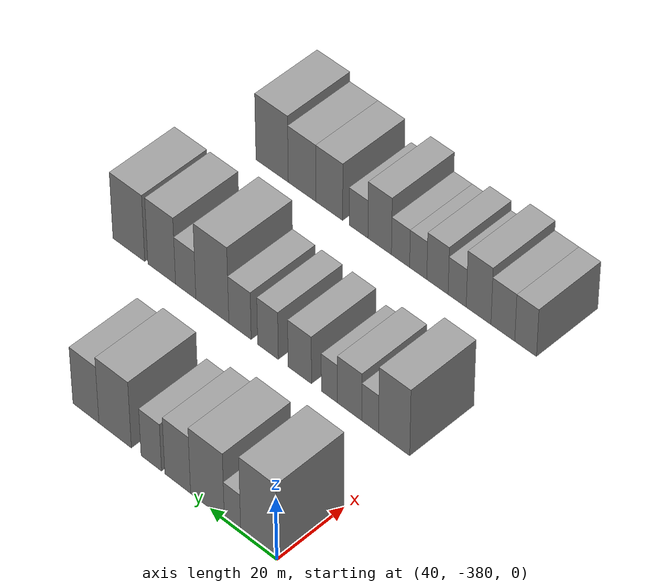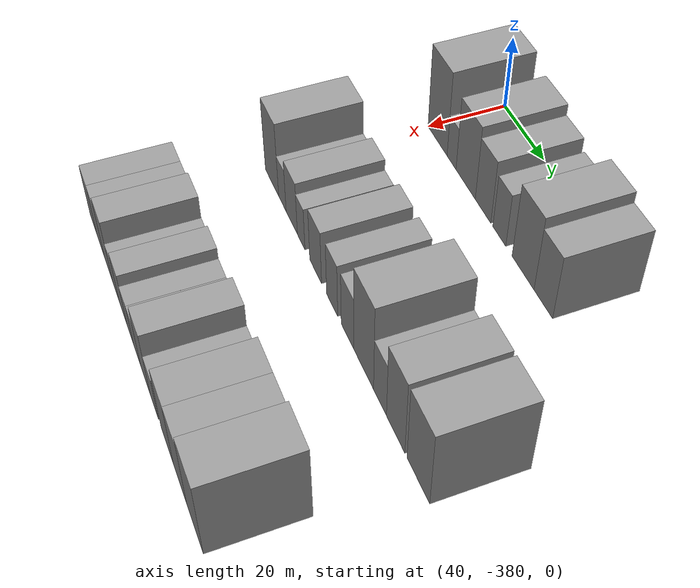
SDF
<sdf version="1.6">
 <world name="default">
  <model name="building_1">
   <static>1</static>
   <pose>50.0000 -374.6131 0 0.000000 0.000000 0.000000</pose>
   <link name="link">
    <pose>0 0 12.00 0 0 0</pose>
    <collision name="collision"><geometry><box><size>20.0000 10.7738 24.0000</size></box></geometry></collision>
    <visual name="visual">
     <cast_shadows>0</cast_shadows>
     <geometry><box><size>20.0000 10.7738 24.0000</size></box></geometry>
     <material>
      <script>
       <uri>model://grey_wall/materials/scripts</uri>
       <uri>model://grey_wall/materials/textures</uri>
       <name>vrc/grey_wall</name>
      </script>
     </material>
    </visual>
   </link>
  </model>
  <model name="building_2">
   <static>1</static>
   <pose>50.0000 -366.7798 0 0.000000 0.000000 0.000000</pose>
   <link name="link">
    <pose>0 0 6.00 0 0 0</pose>
    <collision name="collision"><geometry><box><size>20.0000 4.8928 12.0000</size></box></geometry></collision>
    <visual name="visual">
     <cast_shadows>0</cast_shadows>
     <geometry><box><size>20.0000 4.8928 12.0000</size></box></geometry>
     <material>
      <script>
       <uri>model://grey_wall/materials/scripts</uri>
       <uri>model://grey_wall/materials/textures</uri>
       <name>vrc/grey_wall</name>
      </script>
     </material>
    </visual>
   </link>
  </model>
  <model name="building_3">
   <static>1</static>
   <pose>50.0000 -359.2430 0 0.000000 0.000000 0.000000</pose>
   <link name="link">
    <pose>0 0 10.50 0 0 0</pose>
    <collision name="collision"><geometry><box><size>20.0000 10.1808 21.0000</size></box></geometry></collision>
    <visual name="visual">
     <cast_shadows>0</cast_shadows>
     <geometry><box><size>20.0000 10.1808 21.0000</size></box></geometry>
     <material>
      <script>
       <uri>model://grey_wall/materials/scripts</uri>
       <uri>model://grey_wall/materials/textures</uri>
       <name>vrc/grey_wall</name>
      </script>
     </material>
    </visual>
   </link>
  </model>
  <model name="building_4">
   <static>1</static>
   <pose>50.0000 -350.2289 0 0.000000 0.000000 0.000000</pose>
   <link name="link">
    <pose>0 0 9.00 0 0 0</pose>
    <collision name="collision"><geometry><box><size>20.0000 7.8472 18.0000</size></box></geometry></collision>
    <visual name="visual">
     <cast_shadows>0</cast_shadows>
     <geometry><box><size>20.0000 7.8472 18.0000</size></box></geometry>
     <material>
      <script>
       <uri>model://grey_wall/materials/scripts</uri>
       <uri>model://grey_wall/materials/textures</uri>
       <name>vrc/grey_wall</name>
      </script>
     </material>
    </visual>
   </link>
  </model>
  <model name="building_5">
   <static>1</static>
   <pose>50.0000 -342.1552 0 0.000000 0.000000 0.000000</pose>
   <link name="link">
    <pose>0 0 7.50 0 0 0</pose>
    <collision name="collision"><geometry><box><size>20.0000 6.3002 15.0000</size></box></geometry></collision>
    <visual name="visual">
     <cast_shadows>0</cast_shadows>
     <geometry><box><size>20.0000 6.3002 15.0000</size></box></geometry>
     <material>
      <script>
       <uri>model://grey_wall/materials/scripts</uri>
       <uri>model://grey_wall/materials/textures</uri>
       <name>vrc/grey_wall</name>
      </script>
     </material>
    </visual>
   </link>
  </model>
  <model name="building_6">
   <static>1</static>
   <pose>50.0000 -330.9672 0 0.000000 0.000000 0.000000</pose>
   <link name="link">
    <pose>0 0 10.50 0 0 0</pose>
    <collision name="collision"><geometry><box><size>20.0000 10.0759 21.0000</size></box></geometry></collision>
    <visual name="visual">
     <cast_shadows>0</cast_shadows>
     <geometry><box><size>20.0000 10.0759 21.0000</size></box></geometry>
     <material>
      <script>
       <uri>model://grey_wall/materials/scripts</uri>
       <uri>model://grey_wall/materials/textures</uri>
       <name>vrc/grey_wall</name>
      </script>
     </material>
    </visual>
   </link>
  </model>
  <model name="building_7">
   <static>1</static>
   <pose>50.0000 -321.8414 0 0.000000 0.000000 0.000000</pose>
   <link name="link">
    <pose>0 0 9.00 0 0 0</pose>
    <collision name="collision"><geometry><box><size>20.0000 8.1757 18.0000</size></box></geometry></collision>
    <visual name="visual">
     <cast_shadows>0</cast_shadows>
     <geometry><box><size>20.0000 8.1757 18.0000</size></box></geometry>
     <material>
      <script>
       <uri>model://grey_wall/materials/scripts</uri>
       <uri>model://grey_wall/materials/textures</uri>
       <name>vrc/grey_wall</name>
      </script>
     </material>
    </visual>
   </link>
  </model>
  <model name="building_77">
   <static>1</static>
   <pose>90.0000 -375.3738 0 0.000000 0.000000 0.000000</pose>
   <link name="link">
    <pose>0 0 10.50 0 0 0</pose>
    <collision name="collision"><geometry><box><size>20.0000 9.2523 21.0000</size></box></geometry></collision>
    <visual name="visual">
     <cast_shadows>0</cast_shadows>
     <geometry><box><size>20.0000 9.2523 21.0000</size></box></geometry>
     <material>
      <script>
       <uri>model://grey_wall/materials/scripts</uri>
       <uri>model://grey_wall/materials/textures</uri>
       <name>vrc/grey_wall</name>
      </script>
     </material>
    </visual>
   </link>
  </model>
  <model name="building_78">
   <static>1</static>
   <pose>90.0000 -368.2365 0 0.000000 0.000000 0.000000</pose>
   <link name="link">
    <pose>0 0 6.00 0 0 0</pose>
    <collision name="collision"><geometry><box><size>20.0000 5.0224 12.0000</size></box></geometry></collision>
    <visual name="visual">
     <cast_shadows>0</cast_shadows>
     <geometry><box><size>20.0000 5.0224 12.0000</size></box></geometry>
     <material>
      <script>
       <uri>model://grey_wall/materials/scripts</uri>
       <uri>model://grey_wall/materials/textures</uri>
       <name>vrc/grey_wall</name>
      </script>
     </material>
    </visual>
   </link>
  </model>
  <model name="building_79">
   <static>1</static>
   <pose>90.0000 -362.0399 0 0.000000 0.000000 0.000000</pose>
   <link name="link">
    <pose>0 0 7.50 0 0 0</pose>
    <collision name="collision"><geometry><box><size>20.0000 7.3707 15.0000</size></box></geometry></collision>
    <visual name="visual">
     <cast_shadows>0</cast_shadows>
     <geometry><box><size>20.0000 7.3707 15.0000</size></box></geometry>
     <material>
      <script>
       <uri>model://grey_wall/materials/scripts</uri>
       <uri>model://grey_wall/materials/textures</uri>
       <name>vrc/grey_wall</name>
      </script>
     </material>
    </visual>
   </link>
  </model>
  <model name="building_80">
   <static>1</static>
   <pose>90.0000 -355.9535 0 0.000000 0.000000 0.000000</pose>
   <link name="link">
    <pose>0 0 6.00 0 0 0</pose>
    <collision name="collision"><geometry><box><size>20.0000 4.8022 12.0000</size></box></geometry></collision>
    <visual name="visual">
     <cast_shadows>0</cast_shadows>
     <geometry><box><size>20.0000 4.8022 12.0000</size></box></geometry>
     <material>
      <script>
       <uri>model://grey_wall/materials/scripts</uri>
       <uri>model://grey_wall/materials/textures</uri>
       <name>vrc/grey_wall</name>
      </script>
     </material>
    </visual>
   </link>
  </model>
  <model name="building_81">
   <static>1</static>
   <pose>90.0000 -346.9757 0 0.000000 0.000000 0.000000</pose>
   <link name="link">
    <pose>0 0 7.50 0 0 0</pose>
    <collision name="collision"><geometry><box><size>20.0000 7.1534 15.0000</size></box></geometry></collision>
    <visual name="visual">
     <cast_shadows>0</cast_shadows>
     <geometry><box><size>20.0000 7.1534 15.0000</size></box></geometry>
     <material>
      <script>
       <uri>model://grey_wall/materials/scripts</uri>
       <uri>model://grey_wall/materials/textures</uri>
       <name>vrc/grey_wall</name>
      </script>
     </material>
    </visual>
   </link>
  </model>
  <model name="building_82">
   <static>1</static>
   <pose>90.0000 -337.2014 0 0.000000 0.000000 0.000000</pose>
   <link name="link">
    <pose>0 0 7.50 0 0 0</pose>
    <collision name="collision"><geometry><box><size>20.0000 6.3953 15.0000</size></box></geometry></collision>
    <visual name="visual">
     <cast_shadows>0</cast_shadows>
     <geometry><box><size>20.0000 6.3953 15.0000</size></box></geometry>
     <material>
      <script>
       <uri>model://grey_wall/materials/scripts</uri>
       <uri>model://grey_wall/materials/textures</uri>
       <name>vrc/grey_wall</name>
      </script>
     </material>
    </visual>
   </link>
  </model>
  <model name="building_83">
   <static>1</static>
   <pose>90.0000 -328.5131 0 0.000000 0.000000 0.000000</pose>
   <link name="link">
    <pose>0 0 7.50 0 0 0</pose>
    <collision name="collision"><geometry><box><size>20.0000 6.9813 15.0000</size></box></geometry></collision>
    <visual name="visual">
     <cast_shadows>0</cast_shadows>
     <geometry><box><size>20.0000 6.9813 15.0000</size></box></geometry>
     <material>
      <script>
       <uri>model://grey_wall/materials/scripts</uri>
       <uri>model://grey_wall/materials/textures</uri>
       <name>vrc/grey_wall</name>
      </script>
     </material>
    </visual>
   </link>
  </model>
  <model name="building_84">
   <static>1</static>
   <pose>90.0000 -319.8253 0 0.000000 0.000000 0.000000</pose>
   <link name="link">
    <pose>0 0 12.00 0 0 0</pose>
    <collision name="collision"><geometry><box><size>20.0000 10.3945 24.0000</size></box></geometry></collision>
    <visual name="visual">
     <cast_shadows>0</cast_shadows>
     <geometry><box><size>20.0000 10.3945 24.0000</size></box></geometry>
     <material>
      <script>
       <uri>model://grey_wall/materials/scripts</uri>
       <uri>model://grey_wall/materials/textures</uri>
       <name>vrc/grey_wall</name>
      </script>
     </material>
    </visual>
   </link>
  </model>
  <model name="building_85">
   <static>1</static>
   <pose>90.0000 -311.4002 0 0.000000 0.000000 0.000000</pose>
   <link name="link">
    <pose>0 0 7.50 0 0 0</pose>
    <collision name="collision"><geometry><box><size>20.0000 6.4557 15.0000</size></box></geometry></collision>
    <visual name="visual">
     <cast_shadows>0</cast_shadows>
     <geometry><box><size>20.0000 6.4557 15.0000</size></box></geometry>
     <material>
      <script>
       <uri>model://grey_wall/materials/scripts</uri>
       <uri>model://grey_wall/materials/textures</uri>
       <name>vrc/grey_wall</name>
      </script>
     </material>
    </visual>
   </link>
  </model>
  <model name="building_86">
   <static>1</static>
   <pose>90.0000 -303.7352 0 0.000000 0.000000 0.000000</pose>
   <link name="link">
    <pose>0 0 10.50 0 0 0</pose>
    <collision name="collision"><geometry><box><size>20.0000 8.8743 21.0000</size></box></geometry></collision>
    <visual name="visual">
     <cast_shadows>0</cast_shadows>
     <geometry><box><size>20.0000 8.8743 21.0000</size></box></geometry>
     <material>
      <script>
       <uri>model://grey_wall/materials/scripts</uri>
       <uri>model://grey_wall/materials/textures</uri>
       <name>vrc/grey_wall</name>
      </script>
     </material>
    </visual>
   </link>
  </model>
  <model name="building_87">
   <static>1</static>
   <pose>90.0000 -293.1546 0 0.000000 0.000000 0.000000</pose>
   <link name="link">
    <pose>0 0 10.50 0 0 0</pose>
    <collision name="collision"><geometry><box><size>20.0000 10.2870 21.0000</size></box></geometry></collision>
    <visual name="visual">
     <cast_shadows>0</cast_shadows>
     <geometry><box><size>20.0000 10.2870 21.0000</size></box></geometry>
     <material>
      <script>
       <uri>model://grey_wall/materials/scripts</uri>
       <uri>model://grey_wall/materials/textures</uri>
       <name>vrc/grey_wall</name>
      </script>
     </material>
    </visual>
   </link>
  </model>
  <model name="building_161">
   <static>1</static>
   <pose>130.0000 -376.7719 0 0.000000 0.000000 0.000000</pose>
   <link name="link">
    <pose>0 0 7.50 0 0 0</pose>
    <collision name="collision"><geometry><box><size>20.0000 6.4562 15.0000</size></box></geometry></collision>
    <visual name="visual">
     <cast_shadows>0</cast_shadows>
     <geometry><box><size>20.0000 6.4562 15.0000</size></box></geometry>
     <material>
      <script>
       <uri>model://grey_wall/materials/scripts</uri>
       <uri>model://grey_wall/materials/textures</uri>
       <name>vrc/grey_wall</name>
      </script>
     </material>
    </visual>
   </link>
  </model>
  <model name="building_162">
   <static>1</static>
   <pose>130.0000 -369.9879 0 0.000000 0.000000 0.000000</pose>
   <link name="link">
    <pose>0 0 7.50 0 0 0</pose>
    <collision name="collision"><geometry><box><size>20.0000 7.1119 15.0000</size></box></geometry></collision>
    <visual name="visual">
     <cast_shadows>0</cast_shadows>
     <geometry><box><size>20.0000 7.1119 15.0000</size></box></geometry>
     <material>
      <script>
       <uri>model://grey_wall/materials/scripts</uri>
       <uri>model://grey_wall/materials/textures</uri>
       <name>vrc/grey_wall</name>
      </script>
     </material>
    </visual>
   </link>
  </model>
  <model name="building_163">
   <static>1</static>
   <pose>130.0000 -362.7034 0 0.000000 0.000000 0.000000</pose>
   <link name="link">
    <pose>0 0 9.00 0 0 0</pose>
    <collision name="collision"><geometry><box><size>20.0000 7.4571 18.0000</size></box></geometry></collision>
    <visual name="visual">
     <cast_shadows>0</cast_shadows>
     <geometry><box><size>20.0000 7.4571 18.0000</size></box></geometry>
     <material>
      <script>
       <uri>model://grey_wall/materials/scripts</uri>
       <uri>model://grey_wall/materials/textures</uri>
       <name>vrc/grey_wall</name>
      </script>
     </material>
    </visual>
   </link>
  </model>
  <model name="building_164">
   <static>1</static>
   <pose>130.0000 -356.2314 0 0.000000 0.000000 0.000000</pose>
   <link name="link">
    <pose>0 0 6.00 0 0 0</pose>
    <collision name="collision"><geometry><box><size>20.0000 5.4868 12.0000</size></box></geometry></collision>
    <visual name="visual">
     <cast_shadows>0</cast_shadows>
     <geometry><box><size>20.0000 5.4868 12.0000</size></box></geometry>
     <material>
      <script>
       <uri>model://grey_wall/materials/scripts</uri>
       <uri>model://grey_wall/materials/textures</uri>
       <name>vrc/grey_wall</name>
      </script>
     </material>
    </visual>
   </link>
  </model>
  <model name="building_165">
   <static>1</static>
   <pose>130.0000 -350.2349 0 0.000000 0.000000 0.000000</pose>
   <link name="link">
    <pose>0 0 7.50 0 0 0</pose>
    <collision name="collision"><geometry><box><size>20.0000 6.5063 15.0000</size></box></geometry></collision>
    <visual name="visual">
     <cast_shadows>0</cast_shadows>
     <geometry><box><size>20.0000 6.5063 15.0000</size></box></geometry>
     <material>
      <script>
       <uri>model://grey_wall/materials/scripts</uri>
       <uri>model://grey_wall/materials/textures</uri>
       <name>vrc/grey_wall</name>
      </script>
     </material>
    </visual>
   </link>
  </model>
  <model name="building_166">
   <static>1</static>
   <pose>130.0000 -344.3513 0 0.000000 0.000000 0.000000</pose>
   <link name="link">
    <pose>0 0 6.00 0 0 0</pose>
    <collision name="collision"><geometry><box><size>20.0000 5.2608 12.0000</size></box></geometry></collision>
    <visual name="visual">
     <cast_shadows>0</cast_shadows>
     <geometry><box><size>20.0000 5.2608 12.0000</size></box></geometry>
     <material>
      <script>
       <uri>model://grey_wall/materials/scripts</uri>
       <uri>model://grey_wall/materials/textures</uri>
       <name>vrc/grey_wall</name>
      </script>
     </material>
    </visual>
   </link>
  </model>
  <model name="building_167">
   <static>1</static>
   <pose>130.0000 -338.9157 0 0.000000 0.000000 0.000000</pose>
   <link name="link">
    <pose>0 0 6.00 0 0 0</pose>
    <collision name="collision"><geometry><box><size>20.0000 5.6103 12.0000</size></box></geometry></collision>
    <visual name="visual">
     <cast_shadows>0</cast_shadows>
     <geometry><box><size>20.0000 5.6103 12.0000</size></box></geometry>
     <material>
      <script>
       <uri>model://grey_wall/materials/scripts</uri>
       <uri>model://grey_wall/materials/textures</uri>
       <name>vrc/grey_wall</name>
      </script>
     </material>
    </visual>
   </link>
  </model>
  <model name="building_168">
   <static>1</static>
   <pose>130.0000 -332.4544 0 0.000000 0.000000 0.000000</pose>
   <link name="link">
    <pose>0 0 9.00 0 0 0</pose>
    <collision name="collision"><geometry><box><size>20.0000 7.3123 18.0000</size></box></geometry></collision>
    <visual name="visual">
     <cast_shadows>0</cast_shadows>
     <geometry><box><size>20.0000 7.3123 18.0000</size></box></geometry>
     <material>
      <script>
       <uri>model://grey_wall/materials/scripts</uri>
       <uri>model://grey_wall/materials/textures</uri>
       <name>vrc/grey_wall</name>
      </script>
     </material>
    </visual>
   </link>
  </model>
  <model name="building_169">
   <static>1</static>
   <pose>130.0000 -325.8493 0 0.000000 0.000000 0.000000</pose>
   <link name="link">
    <pose>0 0 6.00 0 0 0</pose>
    <collision name="collision"><geometry><box><size>20.0000 5.8978 12.0000</size></box></geometry></collision>
    <visual name="visual">
     <cast_shadows>0</cast_shadows>
     <geometry><box><size>20.0000 5.8978 12.0000</size></box></geometry>
     <material>
      <script>
       <uri>model://grey_wall/materials/scripts</uri>
       <uri>model://grey_wall/materials/textures</uri>
       <name>vrc/grey_wall</name>
      </script>
     </material>
    </visual>
   </link>
  </model>
  <model name="building_170">
   <static>1</static>
   <pose>130.0000 -316.6530 0 0.000000 0.000000 0.000000</pose>
   <link name="link">
    <pose>0 0 9.00 0 0 0</pose>
    <collision name="collision"><geometry><box><size>20.0000 8.4949 18.0000</size></box></geometry></collision>
    <visual name="visual">
     <cast_shadows>0</cast_shadows>
     <geometry><box><size>20.0000 8.4949 18.0000</size></box></geometry>
     <material>
      <script>
       <uri>model://grey_wall/materials/scripts</uri>
       <uri>model://grey_wall/materials/textures</uri>
       <name>vrc/grey_wall</name>
      </script>
     </material>
    </visual>
   </link>
  </model>
  <model name="building_171">
   <static>1</static>
   <pose>130.0000 -308.0022 0 0.000000 0.000000 0.000000</pose>
   <link name="link">
    <pose>0 0 9.00 0 0 0</pose>
    <collision name="collision"><geometry><box><size>20.0000 8.8067 18.0000</size></box></geometry></collision>
    <visual name="visual">
     <cast_shadows>0</cast_shadows>
     <geometry><box><size>20.0000 8.8067 18.0000</size></box></geometry>
     <material>
      <script>
       <uri>model://grey_wall/materials/scripts</uri>
       <uri>model://grey_wall/materials/textures</uri>
       <name>vrc/grey_wall</name>
      </script>
     </material>
    </visual>
   </link>
  </model>
  <model name="building_172">
   <static>1</static>
   <pose>130.0000 -298.3983 0 0.000000 0.000000 0.000000</pose>
   <link name="link">
    <pose>0 0 10.50 0 0 0</pose>
    <collision name="collision"><geometry><box><size>20.0000 10.4011 21.0000</size></box></geometry></collision>
    <visual name="visual">
     <cast_shadows>0</cast_shadows>
     <geometry><box><size>20.0000 10.4011 21.0000</size></box></geometry>
     <material>
      <script>
       <uri>model://grey_wall/materials/scripts</uri>
       <uri>model://grey_wall/materials/textures</uri>
       <name>vrc/grey_wall</name>
      </script>
     </material>
    </visual>
   </link>
  </model>
 </world>
</sdf>
